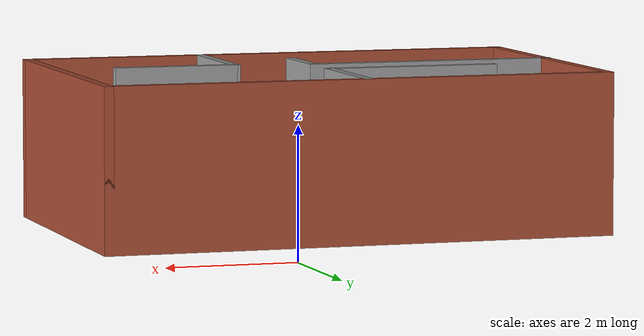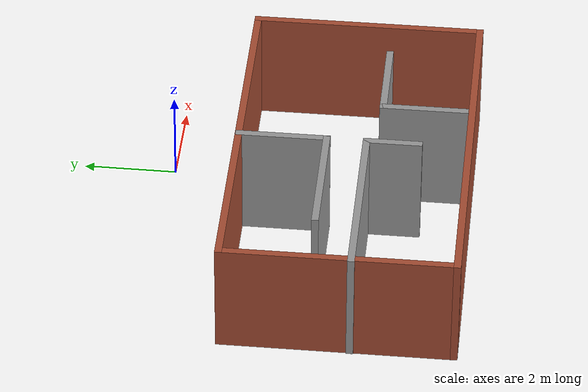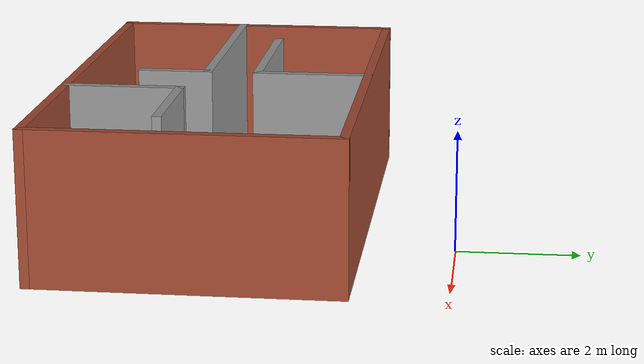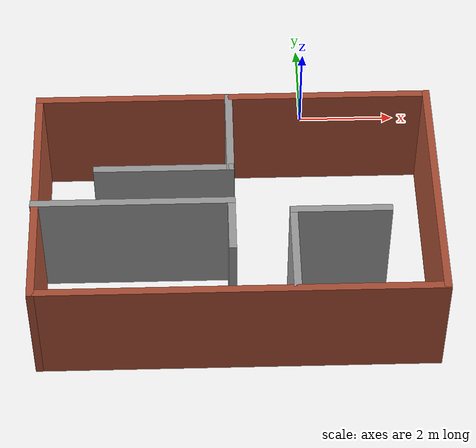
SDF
<?xml version='1.0'?>
<sdf version='1.7'>
  <model name='room'>
    <pose>-1.505 -3.2425 0 0 -0 0</pose>
    <link name='Wall_10'>
      <collision name='Wall_10_Collision'>
        <geometry>
          <box>
            <size>2 0.15 2.5</size>
          </box>
        </geometry>
        <pose>0 0 1.25 0 -0 0</pose>
      </collision>
      <visual name='Wall_10_Visual'>
        <pose>0 0 1.25 0 -0 0</pose>
        <geometry>
          <box>
            <size>2 0.15 2.5</size>
          </box>
        </geometry>
        <material>
          <script>
            <uri>file://media/materials/scripts/gazebo.material</uri>
            <name>Gazebo/Grey</name>
          </script>
          <ambient>1 1 1 1</ambient>
        </material>
        <meta>
          <layer>0</layer>
        </meta>
      </visual>
      <pose>-0.085 0.7475 0 0 -0 -1.5708</pose>
    </link>
    <link name='Wall_11'>
      <collision name='Wall_11_Collision'>
        <geometry>
          <box>
            <size>2.77 0.15 2.5</size>
          </box>
        </geometry>
        <pose>0 0 1.25 0 -0 0</pose>
      </collision>
      <visual name='Wall_11_Visual'>
        <pose>0 0 1.25 0 -0 0</pose>
        <geometry>
          <box>
            <size>2.77 0.15 2.5</size>
          </box>
        </geometry>
        <material>
          <script>
            <uri>file://media/materials/scripts/gazebo.material</uri>
            <name>Gazebo/Grey</name>
          </script>
          <ambient>1 1 1 1</ambient>
        </material>
        <meta>
          <layer>0</layer>
        </meta>
      </visual>
      <pose>-1.405 -0.1775 0 0 -0 3.14159</pose>
    </link>
    <link name='Wall_15'>
      <collision name='Wall_15_Collision'>
        <geometry>
          <box>
            <size>4 0.15 2.5</size>
          </box>
        </geometry>
        <pose>0 0 1.25 0 -0 0</pose>
      </collision>
      <visual name='Wall_15_Visual'>
        <pose>0 0 1.25 0 -0 0</pose>
        <geometry>
          <box>
            <size>4 0.15 2.5</size>
          </box>
        </geometry>
        <material>
          <script>
            <uri>file://media/materials/scripts/gazebo.material</uri>
            <name>Gazebo/Grey</name>
          </script>
          <ambient>1 1 1 1</ambient>
        </material>
        <meta>
          <layer>0</layer>
        </meta>
      </visual>
      <pose>-2.01 -1.0175 0 0 -0 0</pose>
    </link>
    <link name='Wall_18'>
      <collision name='Wall_18_Collision'>
        <geometry>
          <box>
            <size>1.25 0.15 2.5</size>
          </box>
        </geometry>
        <pose>0 0 1.25 0 -0 0</pose>
      </collision>
      <visual name='Wall_18_Visual'>
        <pose>0 0 1.25 0 -0 0</pose>
        <geometry>
          <box>
            <size>1.25 0.15 2.5</size>
          </box>
        </geometry>
        <material>
          <script>
            <uri>file://media/materials/scripts/gazebo.material</uri>
            <name>Gazebo/Grey</name>
          </script>
          <ambient>1 1 1 1</ambient>
        </material>
        <meta>
          <layer>0</layer>
        </meta>
      </visual>
      <pose>-0.085 -1.5675 0 0 -0 -1.5708</pose>
    </link>
    <link name='Wall_2'>
      <collision name='Wall_2_Collision'>
        <geometry>
          <box>
            <size>8 0.15 2.5</size>
          </box>
        </geometry>
        <pose>0 0 1.25 0 -0 0</pose>
      </collision>
      <visual name='Wall_2_Visual'>
        <pose>0 0 1.25 0 -0 0</pose>
        <geometry>
          <box>
            <size>8 0.15 2.5</size>
          </box>
        </geometry>
        <material>
          <script>
            <uri>file://media/materials/scripts/gazebo.material</uri>
            <name>Gazebo/Bricks</name>
          </script>
          <ambient>1 1 1 1</ambient>
        </material>
        <meta>
          <layer>0</layer>
        </meta>
      </visual>
      <pose>0.01 1.6825 0 0 -0 0</pose>
    </link>
    <link name='Wall_26'>
      <collision name='Wall_26_Collision'>
        <geometry>
          <box>
            <size>2 0.15 2.5</size>
          </box>
        </geometry>
        <pose>0 0 1.25 0 -0 0</pose>
      </collision>
      <visual name='Wall_26_Visual'>
        <pose>0 0 1.25 0 -0 0</pose>
        <geometry>
          <box>
            <size>2 0.15 2.5</size>
          </box>
        </geometry>
        <material>
          <script>
            <uri>file://media/materials/scripts/gazebo.material</uri>
            <name>Gazebo/Grey</name>
          </script>
          <ambient>1 1 1 1</ambient>
        </material>
        <meta>
          <layer>0</layer>
        </meta>
      </visual>
      <pose>1.115 -2.2025 0 0 -0 1.5708</pose>
    </link>
    <link name='Wall_27'>
      <collision name='Wall_27_Collision'>
        <geometry>
          <box>
            <size>2 0.15 2.5</size>
          </box>
        </geometry>
        <pose>0 0 1.25 0 -0 0</pose>
      </collision>
      <visual name='Wall_27_Visual'>
        <pose>0 0 1.25 0 -0 0</pose>
        <geometry>
          <box>
            <size>2 0.15 2.5</size>
          </box>
        </geometry>
        <material>
          <script>
            <uri>file://media/materials/scripts/gazebo.material</uri>
            <name>Gazebo/Grey</name>
          </script>
          <ambient>1 1 1 1</ambient>
        </material>
        <meta>
          <layer>0</layer>
        </meta>
      </visual>
      <pose>2.04 -1.2775 0 0 -0 0</pose>
    </link>
    <link name='Wall_3'>
      <collision name='Wall_3_Collision'>
        <geometry>
          <box>
            <size>5 0.15 2.5</size>
          </box>
        </geometry>
        <pose>0 0 1.25 0 -0 0</pose>
      </collision>
      <visual name='Wall_3_Visual'>
        <pose>0 0 1.25 0 -0 0</pose>
        <geometry>
          <box>
            <size>5 0.15 2.5</size>
          </box>
        </geometry>
        <material>
          <script>
            <uri>file://media/materials/scripts/gazebo.material</uri>
            <name>Gazebo/Bricks</name>
          </script>
          <ambient>1 1 1 1</ambient>
        </material>
        <meta>
          <layer>0</layer>
        </meta>
      </visual>
      <pose>3.935 -0.7425 0 0 -0 -1.5708</pose>
    </link>
    <link name='Wall_4'>
      <collision name='Wall_4_Collision'>
        <geometry>
          <box>
            <size>8 0.15 2.5</size>
          </box>
        </geometry>
        <pose>0 0 1.25 0 -0 0</pose>
      </collision>
      <visual name='Wall_4_Visual'>
        <pose>0 0 1.25 0 -0 0</pose>
        <geometry>
          <box>
            <size>8 0.15 2.5</size>
          </box>
        </geometry>
        <material>
          <script>
            <uri>file://media/materials/scripts/gazebo.material</uri>
            <name>Gazebo/Bricks</name>
          </script>
          <ambient>1 1 1 1</ambient>
        </material>
        <meta>
          <layer>0</layer>
        </meta>
      </visual>
      <pose>0.01 -3.1675 0 0 -0 3.14159</pose>
    </link>
    <link name='Wall_5'>
      <collision name='Wall_5_Collision'>
        <geometry>
          <box>
            <size>5 0.15 2.5</size>
          </box>
        </geometry>
        <pose>0 0 1.25 0 -0 0</pose>
      </collision>
      <visual name='Wall_5_Visual'>
        <pose>0 0 1.25 0 -0 0</pose>
        <geometry>
          <box>
            <size>5 0.15 2.5</size>
          </box>
        </geometry>
        <material>
          <script>
            <uri>file://media/materials/scripts/gazebo.material</uri>
            <name>Gazebo/Bricks</name>
          </script>
          <ambient>1 1 1 1</ambient>
        </material>
        <meta>
          <layer>0</layer>
        </meta>
      </visual>
      <pose>-3.915 -0.7425 0 0 -0 1.5708</pose>
    </link>
    <static>1</static>
  </model>
</sdf>
